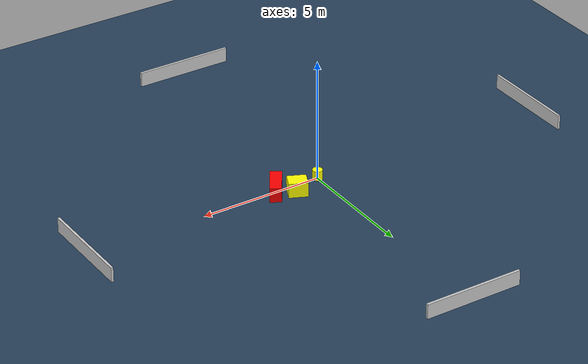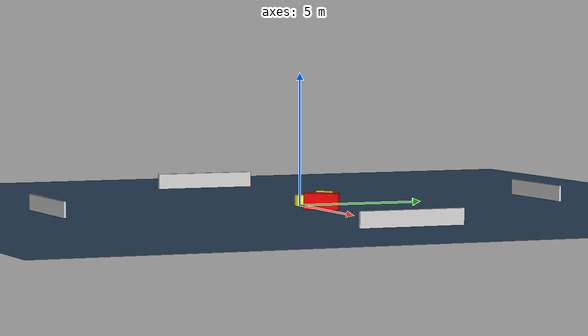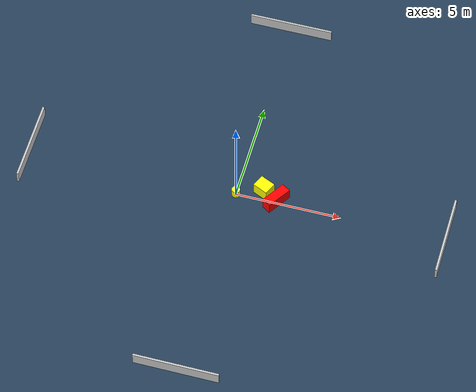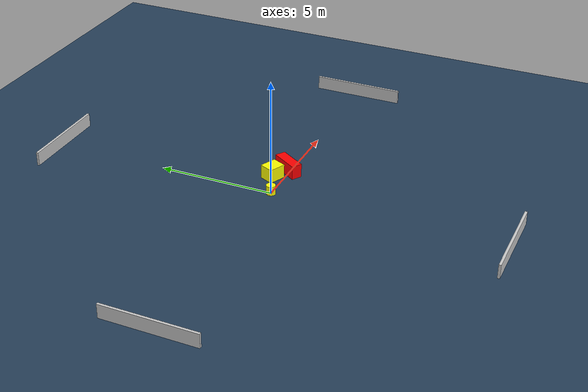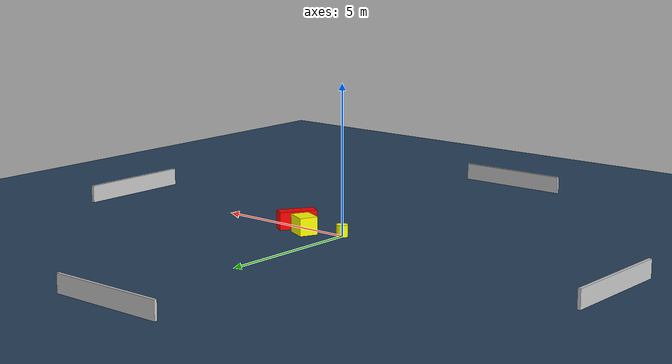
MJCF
<?xml version="1.0" ?>
<mujoco model="generated_environment">
  <option timestep="0.01" integrator="RK4" cone="elliptic"/>
  <default>
    <geom density="1"/>
  </default>
  <asset>
    <texture builtin="gradient" height="3072" name="skybox" rgb1="0.3 0.5 0.7" rgb2="0 0 0" type="skybox" width="512"/>
    <texture builtin="checker" height="300" name="groundplane" rgb1="0.2 0.3 0.4" rgb2="0.1 0.2 0.3" type="2d" width="300"/>
    <material name="groundplane" reflectance="0.2" texrepeat="5 5" texture="groundplane"/>
  </asset>
  <worldbody>
    <light dir="0 0 -1" directional="true" pos="0 0 1.5"/>
    <geom condim="3" friction="0.5 0.005 0.001" material="groundplane" name="floor" pos="0 0 0" size="0 0 0.05" type="plane"/>
    <body name="walls">
      <geom name="wall_1" condim="4" pos="-10.0 0.0 0.3" rgba="0.800000011920929 0.800000011920929 0.800000011920929 1.0" size="0.05 2.0 0.3" type="box"/>
      <geom name="wall_2" condim="4" pos="10.0 0.0 0.3" rgba="0.800000011920929 0.800000011920929 0.800000011920929 1.0" size="0.05 2.0 0.3" type="box"/>
      <geom name="wall_3" condim="4" pos="0.0 -10.0 0.3" rgba="0.800000011920929 0.800000011920929 0.800000011920929 1.0" size="2.0 0.05 0.3" type="box"/>
      <geom name="wall_4" condim="4" pos="0.0 10.0 0.3" rgba="0.800000011920929 0.800000011920929 0.800000011920929 1.0" size="2.0 0.05 0.3" type="box"/>
    </body>
    <body name="robot">
      <joint name="joint_x" type="slide" pos="0 0 0" axis="1 0 0"/>
      <joint name="joint_y" type="slide" pos="0 0 0" axis="0 1 0"/>
      <geom name="robot" type="cylinder" pos="0.0 0.0 0.2" size="0.2 0.2 0.0" mass="5.0" friction="1.0 0.005 0.0001" condim="4" rgba="1.0 1.0 0.0 1.0"/>
    </body>
    <body name="obstacle_1_movable">
      <geom name="obstacle_1_movable" condim="4" pos="1.217405015359043 0.4797994125990661 0.3" euler="0 0 65.55616447519024" friction="0.0 0.005 0.001" rgba="1.0 1.0 0.0 1.0" size="0.3133672285351324 0.3752514225768296 0.3" type="box" mass="0.1"/>
      <joint type="free"/>
    </body>
    <body name="obstacle_2_static">
      <geom name="obstacle_2_static" condim="4" pos="1.9141086870448016 0.06569365381542872 0.3" euler="0 0 57.281588769338086" friction="0.0 0.005 0.001" rgba="1.0 0.0 0.0 1.0" size="0.6335952470178114 0.22827688774047694 0.3" type="box"/>
    </body>
  </worldbody>
  <actuator>
    <motor name="actuator_x" joint="joint_x" gear="1" ctrlrange="-1 1"/>
    <motor name="actuator_y" joint="joint_y" gear="1" ctrlrange="-1 1"/>
  </actuator>
</mujoco>
